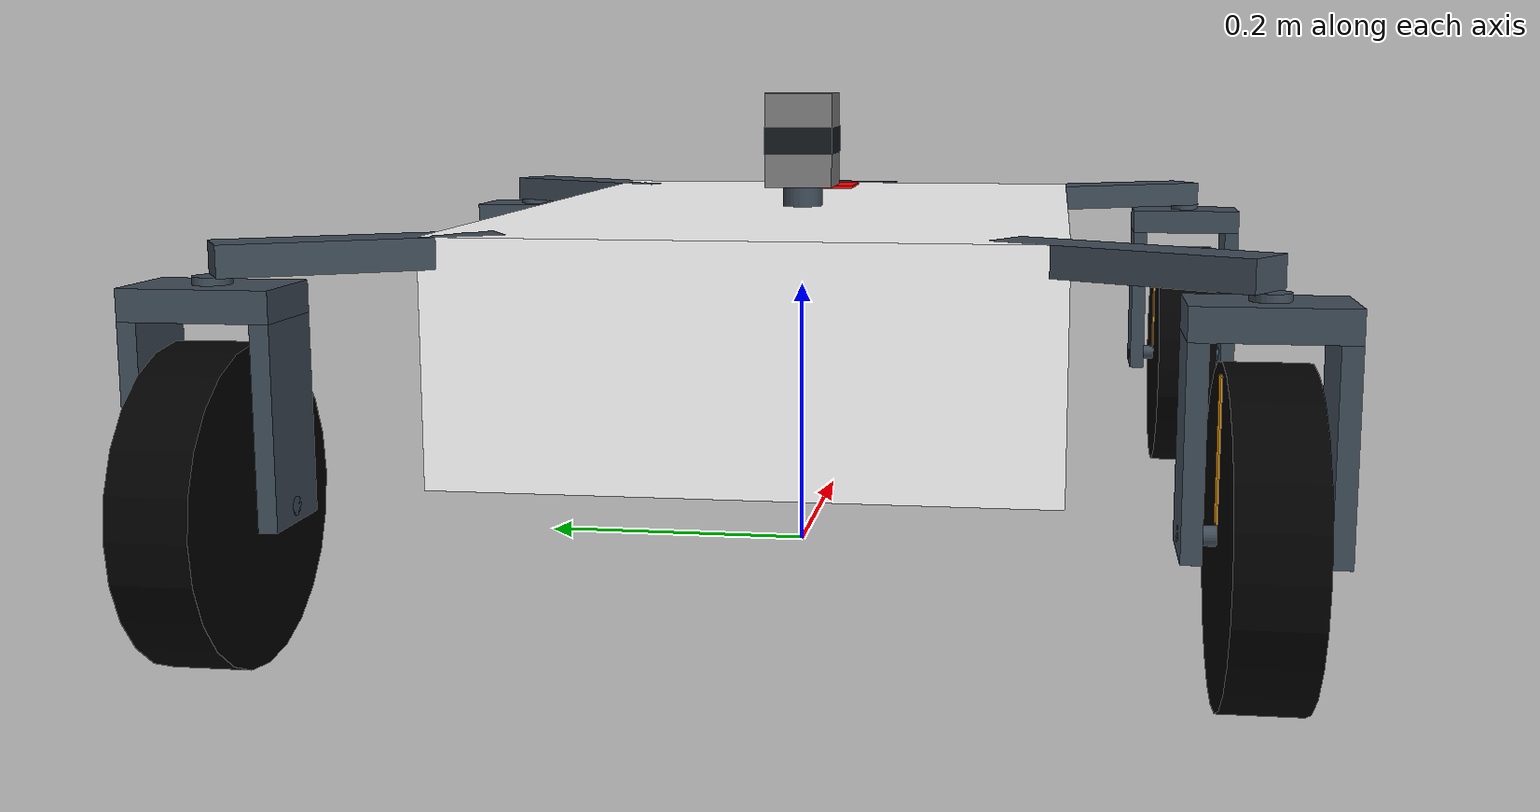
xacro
<?xml version="1.0"?>
<!-- |    robot.urdf.xacro  (ROS 2 / gz port)                                    | -->
<!-- |    author: Koji Shibata                                                   | -->
<!-- |    e-mail: kshibata.0519@gmail.com                                        | -->
<!-- |    This is a URDF file that describes an omnidirectional                   | -->
<!-- |    four-wheeled robot for ROS 2 users.                                     | -->
<robot name="swerve_robot" xmlns:xacro="http://ros.org/wiki/xacro">
<xacro:property name="body_length" value="0.60"/>
<xacro:property name="body_width" value="0.40"/>
<xacro:property name="body_height" value="0.16"/>
<!-- Equivalent box mass/inertia includes the chassis, battery and fixed wheel-support arms. -->
<xacro:property name="body_mass" value="20.0"/>
<xacro:property name="body_ground_clearance" value="0.10"/>
<xacro:property name="body_center_height" value="${body_ground_clearance + body_height/2}"/>

<!-- Ground-plane wheel-center spacing; the steering axes pass through the wheel centers. -->
<xacro:property name="wheelbase" value="0.70"/>
<xacro:property name="track_width" value="0.62"/>
<xacro:property name="wheel_radius" value="0.10"/>
<xacro:property name="wheel_width" value="0.05"/>
<xacro:property name="wheel_mass" value="0.80"/>
<!-- Simplified U-shaped steering fork, with clearance around the rolling wheel. -->
<xacro:property name="steering_mass" value="0.50"/>
<xacro:property name="fork_length" value="0.06"/>
<xacro:property name="fork_thickness" value="0.012"/>
<xacro:property name="fork_side_clearance" value="0.01"/>
<xacro:property name="fork_top_thickness" value="0.02"/>
<xacro:property name="fork_top_clearance" value="0.015"/>
<xacro:property name="fork_width" value="${wheel_width + 2*(fork_side_clearance + fork_thickness)}"/>
<xacro:property name="drive_joint_drop" value="${wheel_radius + fork_top_clearance + fork_top_thickness/2}"/>
<xacro:property name="steering_pivot_height" value="${wheel_radius + drive_joint_drop}"/>
<xacro:property name="mount_arm_width" value="0.04"/>
<xacro:property name="mount_arm_height" value="0.02"/>
<xacro:property name="mount_bearing_height" value="0.005"/>
<xacro:property name="mount_bearing_radius" value="0.012"/>
<xacro:property name="steering_damping" value="0.10"/>
<xacro:property name="drive_damping" value="0.05"/>
<xacro:property name="steering_effort_limit" value="8.0"/>
<xacro:property name="drive_effort_limit" value="3.0"/>
<xacro:property name="steering_velocity_limit" value="${pi}"/>
<!-- Wheel rim speed limit: 0.8 m/s. Actual acceleration limits belong to the future controller. -->
<xacro:property name="max_wheel_linear_speed" value="0.80"/>
<xacro:property name="velocity_limit" value="${max_wheel_linear_speed / wheel_radius}"/>

<!-- UST-10LX-sized housing only; the simulated 360-degree scan is not a UST-10LX sensor model.
     https://www.hokuyo-usa.com/application/files/6716/8451/4574/Hokuyo_-_UST-10LX_-_Spec_Sheet_-_Final.pdf -->
<xacro:property name="lidar_length" value="0.05"/>
<xacro:property name="lidar_width" value="0.05"/>
<xacro:property name="lidar_height" value="0.07"/>
<xacro:property name="lidar_mass" value="0.13"/>
<xacro:property name="lidar_mount_radius" value="0.015"/>
<xacro:property name="lidar_mount_mass" value="0.05"/>
<!-- Keep the scan plane above the body, wheel modules and camera, with a physical support below it. -->
<xacro:property name="lidar_scan_clearance" value="0.05"/>
<xacro:property name="mount_arm_top" value="${steering_pivot_height + fork_top_thickness/2 + mount_bearing_height + mount_arm_height}"/>
<xacro:property name="lidar_scan_height" value="${max(body_center_height + body_height/2, 2*wheel_radius, mount_arm_top) + lidar_scan_clearance}"/>
<xacro:property name="lidar_mount_height" value="${lidar_scan_height - lidar_height/2 - (body_center_height + body_height/2)}"/>

<!-- D435-sized housing only (X depth, Y width, Z height); simulation remains a single RGB camera.
     https://www.realsenseai.com/products/stereo-depth-camera-d435/ -->
<xacro:property name="camera_depth" value="0.025"/>
<xacro:property name="camera_width" value="0.090"/>
<xacro:property name="camera_height" value="0.025"/>
<xacro:property name="camera_mass" value="0.075"/>

<!-- Absolute path to the ros2_control controller configuration.                -->
<!-- Passed in from the launch file (resolved from the package share dir).      -->
<xacro:arg name="controllers_config" default=""/>

<xacro:include filename="wheel.urdf.xacro"/>
<xacro:include filename="camera.urdf.xacro"/>
<xacro:include filename="laser.urdf.xacro"/>

	<link name="base_link"/>
	<link name="body_link">
		<visual>
			<geometry>
				<box size="${body_length} ${body_width} ${body_height}"/>
			</geometry>
			<material name="White">
				<color rgba="1. 1. 1. 1."/>
			</material>
		</visual>

		<collision>
			<geometry>
				<box size="${body_length} ${body_width} ${body_height}"/>
			</geometry>
		</collision>

		<!-- Fixed support arms are part of the chassis; only the forks below them steer. -->
		<xacro:wheel_mount_geometry x_pos="${wheelbase/2}" y_pos="${track_width/2}"/>
		<xacro:wheel_mount_geometry x_pos="${wheelbase/2}" y_pos="${-track_width/2}"/>
		<xacro:wheel_mount_geometry x_pos="${-wheelbase/2}" y_pos="${track_width/2}"/>
		<xacro:wheel_mount_geometry x_pos="${-wheelbase/2}" y_pos="${-track_width/2}"/>

		<inertial>
			<origin xyz="0. 0. 0."/>
			<mass value="${body_mass}"/>
			<inertia ixx="${body_mass * (body_width**2 + body_height**2) / 12}" ixy="0." ixz="0."
					  iyy="${body_mass * (body_length**2 + body_height**2) / 12}" iyz="0."
					  izz="${body_mass * (body_length**2 + body_width**2) / 12}"/>
		</inertial>
	</link>

	<link name="front_marker_link">
		<!-- Visual direction label; its negligible mass is included in body_mass. -->
		<visual>
			<geometry>
				<box size="0.06 0.03 0.002"/>
			</geometry>
			<material name="Red">
				<color rgba="1. 0. 0. 1."/>
			</material>
		</visual>
	</link>

	<joint name="base_to_body_joint" type="fixed">
		<!-- base_link stays at ground level when all four wheels touch a flat floor. -->
		<origin xyz="0 0 ${body_center_height}" rpy="0 0 0"/>
		<parent link="base_link"/>
		<child link="body_link"/>
	</joint>

	<joint name="front_marker_joint" type="fixed">
		<origin xyz="${body_length/2 - 0.06} 0 ${body_height/2 + 0.001}" rpy="0 0 0"/>
		<parent link="body_link"/>
		<child link="front_marker_link"/>
	</joint>

	<xacro:wheel_macro suffix="front_left" parent="body_link" x_pos="${wheelbase/2}" y_pos="${track_width/2}"/>
	<xacro:wheel_macro suffix="front_right" parent="body_link" x_pos="${wheelbase/2}" y_pos="${-track_width/2}"/>
	<xacro:wheel_macro suffix="rear_left" parent="body_link" x_pos="${-wheelbase/2}" y_pos="${track_width/2}"/>
	<xacro:wheel_macro suffix="rear_right" parent="body_link" x_pos="${-wheelbase/2}" y_pos="${-track_width/2}"/>
	<xacro:camera_macro prefix="camera" parent="body_link"
		xyz="${body_length/2 + camera_depth} 0 ${body_height/2 - camera_height/2}"/>
	<xacro:laser_macro prefix="lidar" parent="body_link"
		xyz="0 0 ${lidar_scan_height - body_center_height}" rpy="0 0 0"/>

	<!-- ros2_control: a single system aggregating all 8 wheel joints. -->
	<ros2_control name="GazeboSimSystem" type="system">
		<hardware>
			<plugin>gz_ros2_control/GazeboSimSystem</plugin>
		</hardware>
		<xacro:wheel_ros2_control suffix="front_left"/>
		<xacro:wheel_ros2_control suffix="front_right"/>
		<xacro:wheel_ros2_control suffix="rear_left"/>
		<xacro:wheel_ros2_control suffix="rear_right"/>
	</ros2_control>

	<gazebo reference="base_link">
		<mu1 value="0.05"/>
		<mu2 value="0.05"/>
	</gazebo>

	<gazebo reference="front_marker_link">
		<material>Gazebo/Red</material>
	</gazebo>

	<!-- IMU sensor (handled by gz-sim-imu-system, bridged to ROS). -->
	<gazebo reference="body_link">
		<sensor name="imu_sensor" type="imu">
			<always_on>1</always_on>
			<update_rate>50</update_rate>
			<topic>imu</topic>
			<frame_id>body_link</frame_id>
			<imu>
				<angular_velocity>
					<x><noise type="gaussian"><mean>0.</mean><stddev>1.e-3</stddev></noise></x>
					<y><noise type="gaussian"><mean>0.</mean><stddev>1.e-3</stddev></noise></y>
					<z><noise type="gaussian"><mean>0.</mean><stddev>1.e-3</stddev></noise></z>
				</angular_velocity>
				<linear_acceleration>
					<x><noise type="gaussian"><mean>0.</mean><stddev>1.e-3</stddev></noise></x>
					<y><noise type="gaussian"><mean>0.</mean><stddev>1.e-3</stddev></noise></y>
					<z><noise type="gaussian"><mean>0.</mean><stddev>1.e-3</stddev></noise></z>
				</linear_acceleration>
			</imu>
		</sensor>
	</gazebo>

	<!-- gz_ros2_control system plugin: loads the controller_manager inside gz. -->
	<gazebo>
		<plugin filename="gz_ros2_control-system"
				name="gz_ros2_control::GazeboSimROS2ControlPlugin">
			<parameters>$(arg controllers_config)</parameters>
		</plugin>
	</gazebo>
</robot>

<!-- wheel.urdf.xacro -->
<!-- |    wheel.urdf.xacro  (ROS 2 / gz port)                                    | -->
<!-- |    author: Koji Shibata                                                   | -->
<!-- |    e-mail: kshibata.0519@gmail.com                                        | -->
<!-- |    This is a URDF file that describes an omnidirectional                   | -->
<!-- |    four-wheeled robot for ROS 2 users.                                     | -->
<robot xmlns:xacro="http://ros.org/wiki/xacro">

	<!-- Matching primitive visuals/collisions keep the wheel hardware inexpensive to simulate. -->
	<xacro:macro name="wheel_box_geometry" params="xyz rpy size">
		<visual>
			<origin xyz="${xyz}" rpy="${rpy}"/>
			<geometry><box size="${size}"/></geometry>
			<material name="WheelHardware"><color rgba="0.25 0.30 0.35 1"/></material>
		</visual>
		<collision>
			<origin xyz="${xyz}" rpy="${rpy}"/>
			<geometry><box size="${size}"/></geometry>
		</collision>
	</xacro:macro>

	<!-- Emitted inside body_link; arm and bearing masses are included in body_mass. -->
	<xacro:macro name="wheel_mount_geometry" params="x_pos y_pos">
		<xacro:property name="anchor_x" value="${(body_length/2 - 0.04) * (1 if x_pos > 0 else -1)}"/>
		<xacro:property name="anchor_y" value="${(body_width/2 - 0.04) * (1 if y_pos > 0 else -1)}"/>
		<xacro:property name="arm_length" value="${sqrt((x_pos-anchor_x)**2 + (y_pos-anchor_y)**2)}"/>
		<xacro:property name="arm_yaw" value="${atan2(y_pos-anchor_y, x_pos-anchor_x)}"/>
		<xacro:wheel_box_geometry
			xyz="${(x_pos+anchor_x)/2} ${(y_pos+anchor_y)/2} ${mount_arm_top - mount_arm_height/2 - body_center_height}"
			rpy="0 0 ${arm_yaw}" size="${arm_length} ${mount_arm_width} ${mount_arm_height}"/>
		<visual>
			<origin xyz="${x_pos} ${y_pos} ${steering_pivot_height + fork_top_thickness/2 + mount_bearing_height/2 - body_center_height}"/>
			<geometry><cylinder radius="${mount_bearing_radius}" length="${mount_bearing_height}"/></geometry>
			<material name="WheelHardware"/>
		</visual>
		<collision>
			<origin xyz="${x_pos} ${y_pos} ${steering_pivot_height + fork_top_thickness/2 + mount_bearing_height/2 - body_center_height}"/>
			<geometry><cylinder radius="${mount_bearing_radius}" length="${mount_bearing_height}"/></geometry>
		</collision>
	</xacro:macro>

	<!-- Kinematic/visual description of one wheel (steering link + drive link). -->
	<xacro:macro name="wheel_macro" params="suffix parent x_pos y_pos">
		<!-- Uniform-density three-box fork; inertia includes the parallel-axis terms. -->
		<xacro:property name="fork_arm_height" value="${drive_joint_drop}"/>
		<xacro:property name="fork_arm_y" value="${wheel_width/2 + fork_side_clearance + fork_thickness/2}"/>
		<xacro:property name="fork_arm_z" value="${-(fork_top_thickness + fork_arm_height)/2}"/>
		<xacro:property name="fork_top_volume" value="${fork_length * fork_width * fork_top_thickness}"/>
		<xacro:property name="fork_arm_volume" value="${fork_length * fork_thickness * fork_arm_height}"/>
		<xacro:property name="fork_top_mass" value="${steering_mass * fork_top_volume / (fork_top_volume + 2*fork_arm_volume)}"/>
		<xacro:property name="fork_arm_mass" value="${(steering_mass - fork_top_mass)/2}"/>
		<xacro:property name="fork_com_z" value="${2*fork_arm_mass * fork_arm_z / steering_mass}"/>
		<link name="${suffix}_link1">
			<xacro:wheel_box_geometry xyz="0 0 0" rpy="0 0 0"
				size="${fork_length} ${fork_width} ${fork_top_thickness}"/>
			<xacro:wheel_box_geometry xyz="0 ${fork_arm_y} ${fork_arm_z}" rpy="0 0 0"
				size="${fork_length} ${fork_thickness} ${fork_arm_height}"/>
			<xacro:wheel_box_geometry xyz="0 ${-fork_arm_y} ${fork_arm_z}" rpy="0 0 0"
				size="${fork_length} ${fork_thickness} ${fork_arm_height}"/>
			<!-- Axle is visual only; wheel collision already represents a solid tire and hub. -->
			<visual>
				<origin xyz="0 0 ${-drive_joint_drop}" rpy="${-pi/2} 0 0"/>
				<geometry><cylinder radius="0.006" length="${fork_width}"/></geometry>
				<material name="WheelHardware"/>
			</visual>
			<inertial>
				<origin xyz="0 0 ${fork_com_z}"/>
				<mass value="${steering_mass}"/>
				<inertia
					ixx="${fork_top_mass * ((fork_width**2 + fork_top_thickness**2)/12 + fork_com_z**2) + 2*fork_arm_mass * ((fork_thickness**2 + fork_arm_height**2)/12 + fork_arm_y**2 + (fork_arm_z-fork_com_z)**2)}"
					iyy="${fork_top_mass * ((fork_length**2 + fork_top_thickness**2)/12 + fork_com_z**2) + 2*fork_arm_mass * ((fork_length**2 + fork_arm_height**2)/12 + (fork_arm_z-fork_com_z)**2)}"
					izz="${fork_top_mass * (fork_length**2 + fork_width**2)/12 + 2*fork_arm_mass * ((fork_length**2 + fork_thickness**2)/12 + fork_arm_y**2)}"
					ixy="0" ixz="0" iyz="0"/>
			</inertial>
		</link>

		<link name="${suffix}_link2">
			<visual>
				<origin xyz="0. 0. 0." rpy="-${pi/2} 0. 0."/>
				<geometry>
					<cylinder radius="${wheel_radius}" length="${wheel_width}"/>
				</geometry>
				<material name="Black">
					<color rgba="0. 0. 0. 1."/>
				</material>
			</visual>
			<!-- Thin visual-only stripes make rolling visible on an otherwise symmetric cylinder. -->
			<visual>
				<origin xyz="0 ${wheel_width/2 + 0.0005} ${wheel_radius/2}"/>
				<geometry><box size="0.012 0.001 ${wheel_radius * 0.85}"/></geometry>
				<material name="WheelRotationMarker"><color rgba="1 0.65 0.05 1"/></material>
			</visual>
			<visual>
				<origin xyz="0 ${-wheel_width/2 - 0.0005} ${wheel_radius/2}"/>
				<geometry><box size="0.012 0.001 ${wheel_radius * 0.85}"/></geometry>
				<material name="WheelRotationMarker"/>
			</visual>
			<collision>
				<origin xyz="0. 0. 0." rpy="-${pi/2} 0. 0."/>
				<geometry>
					<cylinder radius="${wheel_radius}" length="${wheel_width}"/>
				</geometry>
			</collision>
			<!-- Cylinder axis is inertial Z, mapped to link Y by this rotation. -->
			<inertial>
				<origin xyz="0. 0. 0." rpy="-${pi/2} 0. 0."/>
				<mass value="${wheel_mass}"/>
				<inertia ixx="${wheel_mass * (wheel_radius**2 / 4 + wheel_width**2 / 12)}" ixy="0." ixz="0."
						 iyy="${wheel_mass * (wheel_radius**2 / 4 + wheel_width**2 / 12)}" iyz="0."
						 izz="${wheel_mass * wheel_radius**2 / 2}"/>
			</inertial>
		</link>

		<!-- joint1: steering (position controlled) -->
		<joint name="${suffix}_joint1" type="continuous">
			<origin xyz="${x_pos} ${y_pos} ${steering_pivot_height - body_center_height}" rpy="0 0 0"/>
			<axis xyz="0. 0. 1."/>
			<parent link="${parent}"/>
			<child link="${suffix}_link1"/>
			<limit effort="${steering_effort_limit}" velocity="${steering_velocity_limit}"/>
			<dynamics damping="${steering_damping}" friction="0"/>
		</joint>

		<!-- joint2: drive (velocity controlled) -->
		<joint name="${suffix}_joint2" type="continuous">
			<origin xyz="0 0 ${-drive_joint_drop}" rpy="0 0 0"/>
			<axis xyz="0. 1. 0."/>
			<parent link="${suffix}_link1"/>
			<child link="${suffix}_link2"/>
			<limit effort="${drive_effort_limit}" velocity="${velocity_limit}"/>
			<dynamics damping="${drive_damping}" friction="0"/>
		</joint>

		<gazebo reference="${suffix}_link2">
			<mu1 value="0.80"/>
			<mu2 value="0.80"/>
		</gazebo>
	</xacro:macro>

	<!-- ros2_control joint entries for one wheel.                                -->
	<!-- joint1 = steering (position command), joint2 = drive (velocity command). -->
	<xacro:macro name="wheel_ros2_control" params="suffix">
		<joint name="${suffix}_joint1">
			<command_interface name="position">
				<param name="min">-${pi}</param>
				<param name="max">${pi}</param>
			</command_interface>
			<state_interface name="position"/>
			<state_interface name="velocity"/>
		</joint>
		<joint name="${suffix}_joint2">
			<command_interface name="velocity">
				<param name="min">-${velocity_limit}</param>
				<param name="max">${velocity_limit}</param>
			</command_interface>
			<state_interface name="position"/>
			<state_interface name="velocity"/>
		</joint>
	</xacro:macro>
</robot>

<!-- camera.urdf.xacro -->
<!-- |    camera.urdf.xacro  (ROS 2 / gz port)                                   | -->
<!-- |    author: Koji Shibata                                                   | -->
<!-- |    e-mail: kshibata.0519@gmail.com                                        | -->
<!-- |    This is a URDF file that describes an omnidirectional                   | -->
<!-- |    four-wheeled robot for ROS 2 users.                                     | -->
<robot xmlns:xacro="http://ros.org/wiki/xacro">
  <xacro:macro name="camera_macro" params="parent prefix xyz">
	<!-- camera_link is at the front imaging plane; the housing extends backward along -X. -->
	<link name="${prefix}_link">
	  <visual>
		<origin xyz="${-camera_depth/2} 0 0"/>
		<geometry><box size="${camera_depth} ${camera_width} ${camera_height}"/></geometry>
		<material name="CameraHousing"><color rgba="0.15 0.18 0.22 1"/></material>
	  </visual>
	  <visual>
		<origin xyz="0.0005 0 0" rpy="0 ${pi/2} 0"/>
		<geometry><cylinder radius="0.007" length="0.001"/></geometry>
		<material name="CameraLens"><color rgba="0.1 0.35 0.7 1"/></material>
	  </visual>
	  <collision>
		<origin xyz="${-camera_depth/2} 0 0"/>
		<geometry><box size="${camera_depth} ${camera_width} ${camera_height}"/></geometry>
	  </collision>
	  <inertial>
		<origin xyz="${-camera_depth/2} 0 0"/>
		<mass value="${camera_mass}"/>
		<inertia ixx="${camera_mass * (camera_width**2 + camera_height**2)/12}"
			iyy="${camera_mass * (camera_depth**2 + camera_height**2)/12}"
			izz="${camera_mass * (camera_depth**2 + camera_width**2)/12}" ixy="0" ixz="0" iyz="0"/>
	  </inertial>
	</link>

	<joint name="${prefix}_joint" type="fixed">
	  <parent link="${parent}"/>
	  <child  link="${prefix}_link"/>
	  <origin xyz="${xyz}" rpy="0 0 0"/>
	</joint>

	<!-- ROS optical axes: Z forward, X right, Y down. -->
	<link name="${prefix}_optical_frame"/>
	<joint name="${prefix}_optical_joint" type="fixed">
	  <parent link="${prefix}_link"/>
	  <child link="${prefix}_optical_frame"/>
	  <origin xyz="0 0 0" rpy="${-pi/2} 0 ${-pi/2}"/>
	</joint>

	<!-- gz camera sensor. Handled by gz-sim-sensors-system (loaded in the    -->
	<!-- world) and bridged to ROS via ros_gz_bridge (see config/gz_bridge.yaml). -->
	<!-- Gazebo renders along camera_link +X; messages use the optical frame. -->
	<gazebo reference="${prefix}_link">
	  <sensor type="camera" name="${prefix}">
		<always_on>1</always_on>
		<update_rate>30</update_rate>
		<visualize>true</visualize>
		<topic>${prefix}/image</topic>
		<frame_id>${prefix}_optical_frame</frame_id>
		<camera name="${prefix}">
		  <horizontal_fov>1.3962634</horizontal_fov>
		  <image>
			<width>800</width>
			<height>600</height>
			<format>R8G8B8</format>
		  </image>
		  <clip>
			<near>0.02</near>
			<far>300</far>
		  </clip>
		  <noise>
			<type>gaussian</type>
			<mean>0.</mean>
			<stddev>0.007</stddev>
		  </noise>
		</camera>
	  </sensor>
	</gazebo>
  </xacro:macro>
</robot>

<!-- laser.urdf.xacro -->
<!-- |    laser.urdf.xacro  (ROS 2 / gz port)                                    | -->
<!-- |    author: Koji Shibata                                                   | -->
<!-- |    e-mail: kshibata.0519@gmail.com                                        | -->
<!-- |    This is a URDF file that describes an omnidirectional                   | -->
<!-- |    four-wheeled robot for ROS 2 users.                                     | -->
<robot xmlns:xacro="http://ros.org/wiki/xacro">
	<xacro:macro name="laser_macro" params="parent prefix xyz rpy">
		<!-- Physical parameters are centralized in robot.urdf.xacro. The origin is the scan center. -->
		<link name="${prefix}_link">
			<collision>
				<origin xyz="0. 0. 0." rpy="0. 0. 0."/>
				<geometry>
					<box size="${lidar_length} ${lidar_width} ${lidar_height}"/>
				</geometry>
			</collision>
			<visual>
				<origin xyz="0. 0. 0." rpy="0. 0. 0."/>
				<geometry>
					<box size="${lidar_length} ${lidar_width} ${lidar_height}"/>
				</geometry>
				<material name="Gray">
					<color rgba="0.5 0.5 0.5 1."/>
				</material>
			</visual>
			<visual>
				<origin xyz="0 0 0"/>
				<geometry><box size="${lidar_length + 0.001} ${lidar_width + 0.001} 0.02"/></geometry>
				<material name="LidarWindow"><color rgba="0.08 0.10 0.12 1"/></material>
			</visual>
			<inertial>
				<mass value="${lidar_mass}"/>
				<origin xyz="0. 0. 0." rpy="0. 0. 0."/>
				<inertia ixx="${lidar_mass * (lidar_width**2 + lidar_height**2) / 12}" ixy="0." ixz="0."
						 iyy="${lidar_mass * (lidar_length**2 + lidar_height**2) / 12}" iyz="0."
						 izz="${lidar_mass * (lidar_length**2 + lidar_width**2) / 12}"/>
			</inertial>
		</link>

		<joint name="${prefix}_joint" type="fixed">
			<origin xyz="${xyz}" rpy="${rpy}"/>
			<parent link="${parent}"/>
			<child link="${prefix}_link"/>
		</joint>

		<!-- A fixed pedestal fills the gap from the chassis roof to the sensor housing. -->
		<link name="${prefix}_mount_link">
			<visual>
				<geometry><cylinder radius="${lidar_mount_radius}" length="${lidar_mount_height}"/></geometry>
				<material name="LidarMount"><color rgba="0.25 0.30 0.35 1"/></material>
			</visual>
			<collision>
				<geometry><cylinder radius="${lidar_mount_radius}" length="${lidar_mount_height}"/></geometry>
			</collision>
			<inertial>
				<mass value="${lidar_mount_mass}"/>
				<inertia ixx="${lidar_mount_mass * (3*lidar_mount_radius**2 + lidar_mount_height**2)/12}"
					iyy="${lidar_mount_mass * (3*lidar_mount_radius**2 + lidar_mount_height**2)/12}"
					izz="${lidar_mount_mass * lidar_mount_radius**2/2}" ixy="0" ixz="0" iyz="0"/>
			</inertial>
		</link>
		<joint name="${prefix}_mount_joint" type="fixed">
			<parent link="${prefix}_link"/>
			<child link="${prefix}_mount_link"/>
			<origin xyz="0 0 ${-lidar_height/2 - lidar_mount_height/2}"/>
		</joint>

		<!-- gz GPU lidar. Handled by gz-sim-sensors-system and bridged to ROS    -->
		<!-- (sensor_msgs/LaserScan) via ros_gz_bridge.                           -->
		<gazebo reference="${prefix}_link">
			<sensor type="gpu_lidar" name="${prefix}_sensor">
				<pose>0. 0. 0. 0. 0. 0.</pose>
				<always_on>1</always_on>
				<visualize>true</visualize>
				<update_rate>40</update_rate>
				<topic>${prefix}/scan</topic>
				<frame_id>${prefix}_link</frame_id>
				<lidar>
					<scan>
						<horizontal>
							<samples>1080</samples>
							<resolution>1</resolution>
							<min_angle>${-pi}</min_angle>
							<max_angle>${pi}</max_angle>
						</horizontal>
						<vertical>
							<samples>1</samples>
							<resolution>1</resolution>
							<min_angle>0</min_angle>
							<max_angle>0</max_angle>
						</vertical>
					</scan>
					<range>
						<min>0.1</min>
						<max>30.</max>
						<resolution>0.01</resolution>
					</range>
					<noise>
						<type>gaussian</type>
						<mean>0.</mean>
						<stddev>1.e-3</stddev>
					</noise>
				</lidar>
			</sensor>
		</gazebo>
	</xacro:macro>
</robot>
